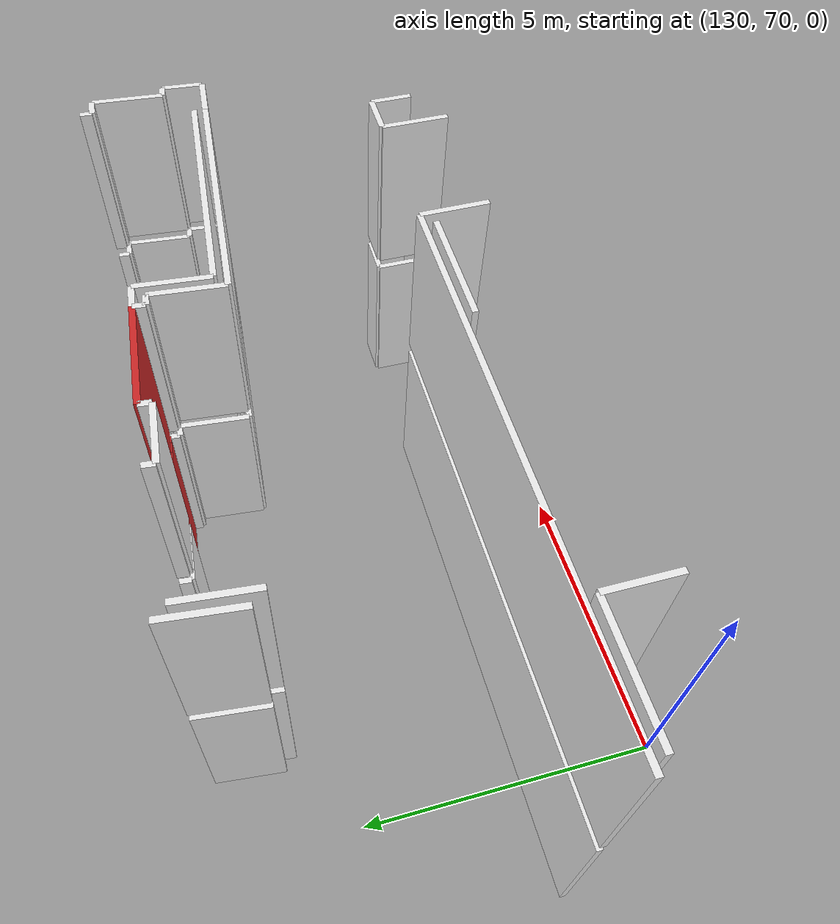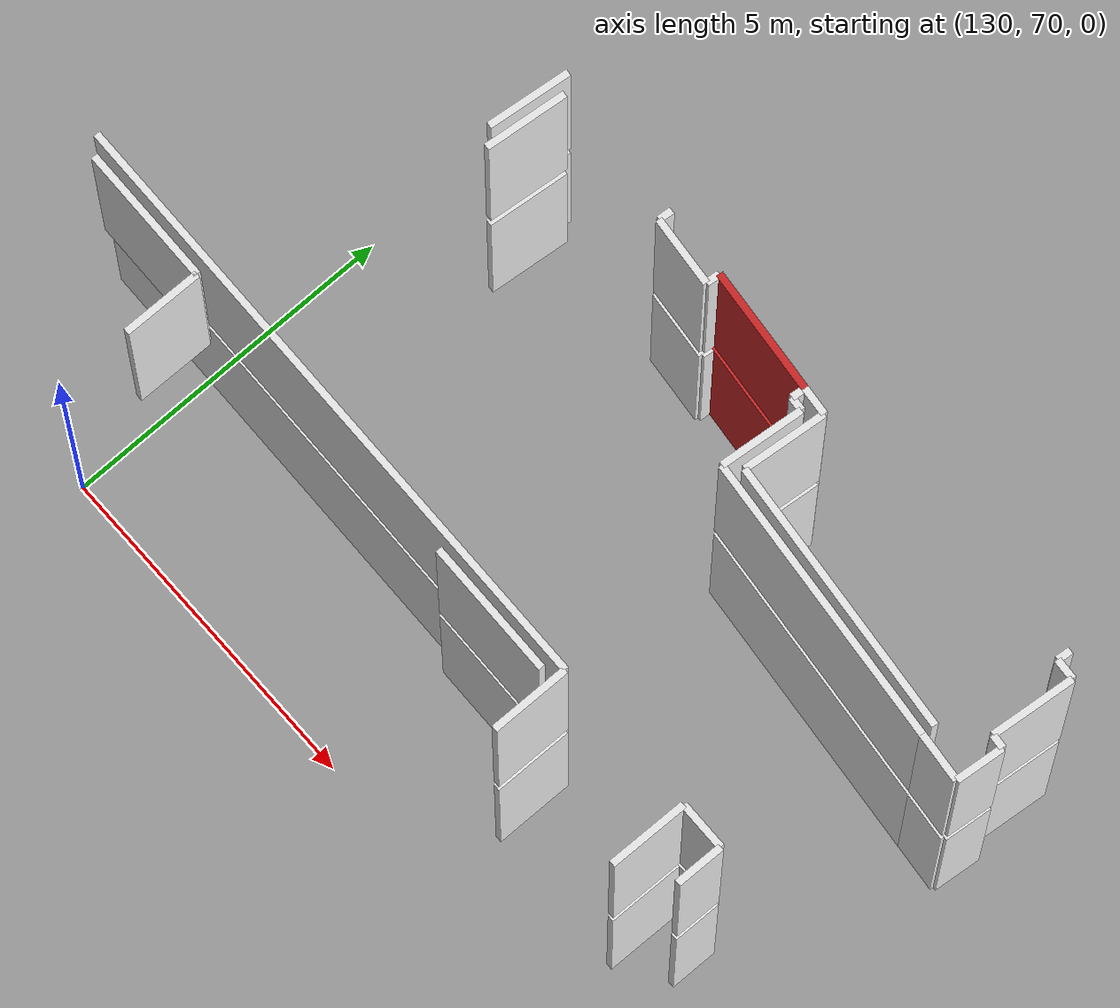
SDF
<sdf version="1.6">
 <world name="default">
  <model name="wall_135.5_76.8_0.0">
   <static>true</static>
   <pose>135.49499999999534 76.79000000003725 1.5 0 0 -0.10022174961299568</pose>
   <link name="link">
    <visual name="visual">
     <geometry><box><size>1.799027515083101 0.1 3</size></box></geometry>
     <material>
      <script><uri>file://media/materials/scripts/gazebo.material</uri><name>Gazebo/Red</name></script>
     </material>
    </visual>
   </link>
  </model>
  <model name="wall_134.4_76.9_0.0">
   <static>true</static>
   <pose>134.39999999999418 76.89999999990687 1.5 0 0 3.0419240009977764</pose>
   <link name="link">
    <visual name="visual">
     <geometry><box><size>0.4019950248137912 0.1 3</size></box></geometry>
     <material>
      <script><uri>file://media/materials/scripts/gazebo.material</uri><name>Gazebo/White</name></script>
     </material>
    </visual>
   </link>
  </model>
  <model name="wall_138.6_75.3_0.0">
   <static>true</static>
   <pose>138.63999999998487 75.26000000000931 1.5 0 0 3.0404164645756886</pose>
   <link name="link">
    <visual name="visual">
     <geometry><box><size>3.9602525171943066 0.1 3</size></box></geometry>
     <material>
      <script><uri>file://media/materials/scripts/gazebo.material</uri><name>Gazebo/White</name></script>
     </material>
    </visual>
   </link>
  </model>
  <model name="wall_136.7_76.1_0.0">
   <static>true</static>
   <pose>136.72999999998137 76.06000000005588 1.5 0 0 1.4711276743229451</pose>
   <link name="link">
    <visual name="visual">
     <geometry><box><size>1.2059850747193837 0.1 3</size></box></geometry>
     <material>
      <script><uri>file://media/materials/scripts/gazebo.material</uri><name>Gazebo/White</name></script>
     </material>
    </visual>
   </link>
  </model>
  <model name="wall_136.6_76.7_0.0">
   <static>true</static>
   <pose>136.5899999999965 76.68000000016764 1.5 0 0 3.0419240009977764</pose>
   <link name="link">
    <visual name="visual">
     <geometry><box><size>0.4019950248137912 0.1 3</size></box></geometry>
     <material>
      <script><uri>file://media/materials/scripts/gazebo.material</uri><name>Gazebo/White</name></script>
     </material>
    </visual>
   </link>
  </model>
  <model name="wall_131.3_76.6_0.0">
   <static>true</static>
   <pose>131.34500000000116 76.60000000009313 1.5 0 0 1.4628838380389488</pose>
   <link name="link">
    <visual name="visual">
     <geometry><box><size>1.2070211267550837 0.1 3</size></box></geometry>
     <material>
      <script><uri>file://media/materials/scripts/gazebo.material</uri><name>Gazebo/White</name></script>
     </material>
    </visual>
   </link>
  </model>
  <model name="wall_141.0_76.8_0.0">
   <static>true</static>
   <pose>140.9899999999907 76.8300000000745 1.5 0 0 -1.6704649792860586</pose>
   <link name="link">
    <visual name="visual">
     <geometry><box><size>0.20099751260961132 0.1 3</size></box></geometry>
     <material>
      <script><uri>file://media/materials/scripts/gazebo.material</uri><name>Gazebo/White</name></script>
     </material>
    </visual>
   </link>
  </model>
  <model name="wall_141.1_76.7_0.0">
   <static>true</static>
   <pose>141.13000000000466 76.71999999997206 1.5 0 0 -0.066568163827335</pose>
   <link name="link">
    <visual name="visual">
     <geometry><box><size>0.30066592761516014 0.1 3</size></box></geometry>
     <material>
      <script><uri>file://media/materials/scripts/gazebo.material</uri><name>Gazebo/White</name></script>
     </material>
    </visual>
   </link>
  </model>
  <model name="wall_141.2_76.1_0.0">
   <static>true</static>
   <pose>141.22000000000116 76.10999999986961 1.5 0 0 -1.6704649793148743</pose>
   <link name="link">
    <visual name="visual">
     <geometry><box><size>1.2059850747251755 0.1 3</size></box></geometry>
     <material>
      <script><uri>file://media/materials/scripts/gazebo.material</uri><name>Gazebo/White</name></script>
     </material>
    </visual>
   </link>
  </model>
  <model name="wall_141.3_75.5_0.0">
   <static>true</static>
   <pose>141.2599999999802 75.5 1.5 0 0 -0.09966865027235515</pose>
   <link name="link">
    <visual name="visual">
     <geometry><box><size>0.20099751238951993 0.1 3</size></box></geometry>
     <material>
      <script><uri>file://media/materials/scripts/gazebo.material</uri><name>Gazebo/White</name></script>
     </material>
    </visual>
   </link>
  </model>
  <model name="wall_141.3_75.1_0.0">
   <static>true</static>
   <pose>141.32499999998254 75.14500000001863 1.5 0 0 -1.6718996984815795</pose>
   <link name="link">
    <visual name="visual">
     <geometry><box><size>0.6935416357843824 0.1 3</size></box></geometry>
     <material>
      <script><uri>file://media/materials/scripts/gazebo.material</uri><name>Gazebo/White</name></script>
     </material>
    </visual>
   </link>
  </model>
  <model name="wall_140.9_74.8_0.0">
   <static>true</static>
   <pose>140.94000000000233 74.83499999996275 1.5 0 0 3.041924000670513</pose>
   <link name="link">
    <visual name="visual">
     <geometry><box><size>0.7034912934617817 0.1 3</size></box></geometry>
     <material>
      <script><uri>file://media/materials/scripts/gazebo.material</uri><name>Gazebo/White</name></script>
     </material>
    </visual>
   </link>
  </model>
  <model name="wall_138.5_75.1_0.0">
   <static>true</static>
   <pose>138.52000000001863 75.07499999995343 1.5 0 0 3.0428807098041264</pose>
   <link name="link">
    <visual name="visual">
     <geometry><box><size>4.1602523961721385 0.1 3</size></box></geometry>
     <material>
      <script><uri>file://media/materials/scripts/gazebo.material</uri><name>Gazebo/White</name></script>
     </material>
    </visual>
   </link>
  </model>
  <model name="wall_136.5_75.9_0.0">
   <static>true</static>
   <pose>136.5100000000093 75.87999999988824 1.5 0 0 1.4711276743229451</pose>
   <link name="link">
    <visual name="visual">
     <geometry><box><size>1.2059850747193837 0.1 3</size></box></geometry>
     <material>
      <script><uri>file://media/materials/scripts/gazebo.material</uri><name>Gazebo/White</name></script>
     </material>
    </visual>
   </link>
  </model>
  <model name="wall_136.5_76.5_0.0">
   <static>true</static>
   <pose>136.47000000000116 76.48999999999069 1.5 0 0 3.0419240010121844</pose>
   <link name="link">
    <visual name="visual">
     <geometry><box><size>0.20099751243585498 0.1 3</size></box></geometry>
     <material>
      <script><uri>file://media/materials/scripts/gazebo.material</uri><name>Gazebo/White</name></script>
     </material>
    </visual>
   </link>
  </model>
  <model name="wall_136.4_76.6_0.0">
   <static>true</static>
   <pose>136.38000000000466 76.60000000009313 1.5 0 0 1.4711276743037347</pose>
   <link name="link">
    <visual name="visual">
     <geometry><box><size>0.20099751260961132 0.1 3</size></box></geometry>
     <material>
      <script><uri>file://media/materials/scripts/gazebo.material</uri><name>Gazebo/White</name></script>
     </material>
    </visual>
   </link>
  </model>
  <model name="wall_134.6_76.8_0.0">
   <static>true</static>
   <pose>134.5899999999965 76.78000000002794 1.5 0 0 -1.6704649792284274</pose>
   <link name="link">
    <visual name="visual">
     <geometry><box><size>0.20099751214046915 0.1 3</size></box></geometry>
     <material>
      <script><uri>file://media/materials/scripts/gazebo.material</uri><name>Gazebo/White</name></script>
     </material>
    </visual>
   </link>
  </model>
  <model name="wall_134.1_76.7_0.0">
   <static>true</static>
   <pose>134.0800000000163 76.72999999998137 1.5 0 0 3.0419240014674718</pose>
   <link name="link">
    <visual name="visual">
     <geometry><box><size>1.004987562075021 0.1 3</size></box></geometry>
     <material>
      <script><uri>file://media/materials/scripts/gazebo.material</uri><name>Gazebo/White</name></script>
     </material>
    </visual>
   </link>
  </model>
  <model name="wall_133.6_76.9_0.0">
   <static>true</static>
   <pose>133.5899999999965 76.87999999988824 1.5 0 0 1.4711276745918913</pose>
   <link name="link">
    <visual name="visual">
     <geometry><box><size>0.20099751260381943 0.1 3</size></box></geometry>
     <material>
      <script><uri>file://media/materials/scripts/gazebo.material</uri><name>Gazebo/White</name></script>
     </material>
    </visual>
   </link>
  </model>
  <model name="wall_131.5_76.4_0.0">
   <static>true</static>
   <pose>131.52999999999884 76.38500000000931 1.5 0 0 -1.6712969258987618</pose>
   <link name="link">
    <visual name="visual">
     <geometry><box><size>1.1960351164910918 0.1 3</size></box></geometry>
     <material>
      <script><uri>file://media/materials/scripts/gazebo.material</uri><name>Gazebo/White</name></script>
     </material>
    </visual>
   </link>
  </model>
  <model name="wall_132.6_72.2_0.0">
   <static>true</static>
   <pose>132.64499999998952 72.2050000000745 1.5 0 0 -0.014491739052994581</pose>
   <link name="link">
    <visual name="visual">
     <geometry><box><size>8.970941979553427 0.1 3</size></box></geometry>
     <material>
      <script><uri>file://media/materials/scripts/gazebo.material</uri><name>Gazebo/White</name></script>
     </material>
    </visual>
   </link>
  </model>
  <model name="wall_137.1_71.6_0.0">
   <static>true</static>
   <pose>137.125 71.57000000006519 1.5 0 0 -1.579568031646505</pose>
   <link name="link">
    <visual name="visual">
     <geometry><box><size>1.1400438589359028 0.1 3</size></box></geometry>
     <material>
      <script><uri>file://media/materials/scripts/gazebo.material</uri><name>Gazebo/White</name></script>
     </material>
    </visual>
   </link>
  </model>
  <model name="wall_139.3_71.5_0.0">
   <static>true</static>
   <pose>139.3300000000163 71.54000000003725 1.5 0 0 1.553254266716002</pose>
   <link name="link">
    <visual name="visual">
     <geometry><box><size>1.1401754247642402 0.1 3</size></box></geometry>
     <material>
      <script><uri>file://media/materials/scripts/gazebo.material</uri><name>Gazebo/White</name></script>
     </material>
    </visual>
   </link>
  </model>
  <model name="wall_139.7_72.1_0.0">
   <static>true</static>
   <pose>139.68500000002678 72.10499999998137 1.5 0 0 -0.014491738741580868</pose>
   <link name="link">
    <visual name="visual">
     <geometry><box><size>0.6900724599625337 0.1 3</size></box></geometry>
     <material>
      <script><uri>file://media/materials/scripts/gazebo.material</uri><name>Gazebo/White</name></script>
     </material>
    </visual>
   </link>
  </model>
  <model name="wall_140.0_71.8_0.0">
   <static>true</static>
   <pose>140.02500000002328 71.75500000012107 1.5 0 0 -1.5852880658750648</pose>
   <link name="link">
    <visual name="visual">
     <geometry><box><size>0.6900724599077062 0.1 3</size></box></geometry>
     <material>
      <script><uri>file://media/materials/scripts/gazebo.material</uri><name>Gazebo/White</name></script>
     </material>
    </visual>
   </link>
  </model>
  <model name="wall_135.9_72.0_0.0">
   <static>true</static>
   <pose>135.94499999997788 71.9550000000745 1.5 0 0 -0.015383401914200052</pose>
   <link name="link">
    <visual name="visual">
     <geometry><box><size>1.9502307555930525 0.1 3</size></box></geometry>
     <material>
      <script><uri>file://media/materials/scripts/gazebo.material</uri><name>Gazebo/White</name></script>
     </material>
    </visual>
   </link>
  </model>
  <model name="wall_135.5_76.8_3.2">
   <static>true</static>
   <pose>135.49499999999534 76.79000000003725 4.7 0 0 -0.10022174961299568</pose>
   <link name="link">
    <visual name="visual">
     <geometry><box><size>1.799027515083101 0.1 3</size></box></geometry>
     <material>
      <script><uri>file://media/materials/scripts/gazebo.material</uri><name>Gazebo/Red</name></script>
     </material>
    </visual>
   </link>
  </model>
  <model name="wall_138.6_75.3_3.2">
   <static>true</static>
   <pose>138.63999999998487 75.26000000000931 4.7 0 0 3.0404164645756886</pose>
   <link name="link">
    <visual name="visual">
     <geometry><box><size>3.9602525171943066 0.1 3</size></box></geometry>
     <material>
      <script><uri>file://media/materials/scripts/gazebo.material</uri><name>Gazebo/White</name></script>
     </material>
    </visual>
   </link>
  </model>
  <model name="wall_136.7_76.1_3.2">
   <static>true</static>
   <pose>136.72999999998137 76.06000000005588 4.7 0 0 1.4711276743229451</pose>
   <link name="link">
    <visual name="visual">
     <geometry><box><size>1.2059850747193837 0.1 3</size></box></geometry>
     <material>
      <script><uri>file://media/materials/scripts/gazebo.material</uri><name>Gazebo/White</name></script>
     </material>
    </visual>
   </link>
  </model>
  <model name="wall_136.6_76.7_3.2">
   <static>true</static>
   <pose>136.5899999999965 76.68000000016764 4.7 0 0 3.0419240009977764</pose>
   <link name="link">
    <visual name="visual">
     <geometry><box><size>0.4019950248137912 0.1 3</size></box></geometry>
     <material>
      <script><uri>file://media/materials/scripts/gazebo.material</uri><name>Gazebo/White</name></script>
     </material>
    </visual>
   </link>
  </model>
  <model name="wall_131.3_76.6_3.2">
   <static>true</static>
   <pose>131.34500000000116 76.60000000009313 4.7 0 0 1.4628838380389488</pose>
   <link name="link">
    <visual name="visual">
     <geometry><box><size>1.2070211267550837 0.1 3</size></box></geometry>
     <material>
      <script><uri>file://media/materials/scripts/gazebo.material</uri><name>Gazebo/White</name></script>
     </material>
    </visual>
   </link>
  </model>
  <model name="wall_141.0_76.8_3.2">
   <static>true</static>
   <pose>140.9899999999907 76.8300000000745 4.7 0 0 -1.6704649792860586</pose>
   <link name="link">
    <visual name="visual">
     <geometry><box><size>0.20099751260961132 0.1 3</size></box></geometry>
     <material>
      <script><uri>file://media/materials/scripts/gazebo.material</uri><name>Gazebo/White</name></script>
     </material>
    </visual>
   </link>
  </model>
  <model name="wall_141.1_76.7_3.2">
   <static>true</static>
   <pose>141.13000000000466 76.71999999997206 4.7 0 0 -0.066568163827335</pose>
   <link name="link">
    <visual name="visual">
     <geometry><box><size>0.30066592761516014 0.1 3</size></box></geometry>
     <material>
      <script><uri>file://media/materials/scripts/gazebo.material</uri><name>Gazebo/White</name></script>
     </material>
    </visual>
   </link>
  </model>
  <model name="wall_141.2_76.1_3.2">
   <static>true</static>
   <pose>141.22000000000116 76.10999999986961 4.7 0 0 -1.6704649793148743</pose>
   <link name="link">
    <visual name="visual">
     <geometry><box><size>1.2059850747251755 0.1 3</size></box></geometry>
     <material>
      <script><uri>file://media/materials/scripts/gazebo.material</uri><name>Gazebo/White</name></script>
     </material>
    </visual>
   </link>
  </model>
  <model name="wall_141.3_75.5_3.2">
   <static>true</static>
   <pose>141.2599999999802 75.5 4.7 0 0 -0.09966865027235515</pose>
   <link name="link">
    <visual name="visual">
     <geometry><box><size>0.20099751238951993 0.1 3</size></box></geometry>
     <material>
      <script><uri>file://media/materials/scripts/gazebo.material</uri><name>Gazebo/White</name></script>
     </material>
    </visual>
   </link>
  </model>
  <model name="wall_141.3_75.1_3.2">
   <static>true</static>
   <pose>141.32499999998254 75.14500000001863 4.7 0 0 -1.6718996984815795</pose>
   <link name="link">
    <visual name="visual">
     <geometry><box><size>0.6935416357843824 0.1 3</size></box></geometry>
     <material>
      <script><uri>file://media/materials/scripts/gazebo.material</uri><name>Gazebo/White</name></script>
     </material>
    </visual>
   </link>
  </model>
  <model name="wall_140.9_74.8_3.2">
   <static>true</static>
   <pose>140.94000000000233 74.83499999996275 4.7 0 0 3.041924000670513</pose>
   <link name="link">
    <visual name="visual">
     <geometry><box><size>0.7034912934617817 0.1 3</size></box></geometry>
     <material>
      <script><uri>file://media/materials/scripts/gazebo.material</uri><name>Gazebo/White</name></script>
     </material>
    </visual>
   </link>
  </model>
  <model name="wall_138.5_75.1_3.2">
   <static>true</static>
   <pose>138.52000000001863 75.07499999995343 4.7 0 0 3.0428807098041264</pose>
   <link name="link">
    <visual name="visual">
     <geometry><box><size>4.1602523961721385 0.1 3</size></box></geometry>
     <material>
      <script><uri>file://media/materials/scripts/gazebo.material</uri><name>Gazebo/White</name></script>
     </material>
    </visual>
   </link>
  </model>
  <model name="wall_136.5_75.9_3.2">
   <static>true</static>
   <pose>136.5100000000093 75.87999999988824 4.7 0 0 1.4711276743229451</pose>
   <link name="link">
    <visual name="visual">
     <geometry><box><size>1.2059850747193837 0.1 3</size></box></geometry>
     <material>
      <script><uri>file://media/materials/scripts/gazebo.material</uri><name>Gazebo/White</name></script>
     </material>
    </visual>
   </link>
  </model>
  <model name="wall_136.5_76.5_3.2">
   <static>true</static>
   <pose>136.47000000000116 76.48999999999069 4.7 0 0 3.0419240010121844</pose>
   <link name="link">
    <visual name="visual">
     <geometry><box><size>0.20099751243585498 0.1 3</size></box></geometry>
     <material>
      <script><uri>file://media/materials/scripts/gazebo.material</uri><name>Gazebo/White</name></script>
     </material>
    </visual>
   </link>
  </model>
  <model name="wall_136.4_76.6_3.2">
   <static>true</static>
   <pose>136.38000000000466 76.60000000009313 4.7 0 0 1.4711276743037347</pose>
   <link name="link">
    <visual name="visual">
     <geometry><box><size>0.20099751260961132 0.1 3</size></box></geometry>
     <material>
      <script><uri>file://media/materials/scripts/gazebo.material</uri><name>Gazebo/White</name></script>
     </material>
    </visual>
   </link>
  </model>
  <model name="wall_134.6_76.8_3.2">
   <static>true</static>
   <pose>134.5899999999965 76.78000000002794 4.7 0 0 -1.6704649792284274</pose>
   <link name="link">
    <visual name="visual">
     <geometry><box><size>0.20099751214046915 0.1 3</size></box></geometry>
     <material>
      <script><uri>file://media/materials/scripts/gazebo.material</uri><name>Gazebo/White</name></script>
     </material>
    </visual>
   </link>
  </model>
  <model name="wall_134.1_76.7_3.2">
   <static>true</static>
   <pose>134.0800000000163 76.72999999998137 4.7 0 0 3.0419240014674718</pose>
   <link name="link">
    <visual name="visual">
     <geometry><box><size>1.004987562075021 0.1 3</size></box></geometry>
     <material>
      <script><uri>file://media/materials/scripts/gazebo.material</uri><name>Gazebo/White</name></script>
     </material>
    </visual>
   </link>
  </model>
  <model name="wall_133.6_76.9_3.2">
   <static>true</static>
   <pose>133.5899999999965 76.87999999988824 4.7 0 0 1.4711276745918913</pose>
   <link name="link">
    <visual name="visual">
     <geometry><box><size>0.20099751260381943 0.1 3</size></box></geometry>
     <material>
      <script><uri>file://media/materials/scripts/gazebo.material</uri><name>Gazebo/White</name></script>
     </material>
    </visual>
   </link>
  </model>
  <model name="wall_131.5_76.4_3.2">
   <static>true</static>
   <pose>131.52999999999884 76.38500000000931 4.7 0 0 -1.6712969258987618</pose>
   <link name="link">
    <visual name="visual">
     <geometry><box><size>1.1960351164910918 0.1 3</size></box></geometry>
     <material>
      <script><uri>file://media/materials/scripts/gazebo.material</uri><name>Gazebo/White</name></script>
     </material>
    </visual>
   </link>
  </model>
  <model name="wall_132.6_72.2_3.2">
   <static>true</static>
   <pose>132.64499999998952 72.2050000000745 4.7 0 0 -0.014491739052994581</pose>
   <link name="link">
    <visual name="visual">
     <geometry><box><size>8.970941979553427 0.1 3</size></box></geometry>
     <material>
      <script><uri>file://media/materials/scripts/gazebo.material</uri><name>Gazebo/White</name></script>
     </material>
    </visual>
   </link>
  </model>
  <model name="wall_137.1_71.6_3.2">
   <static>true</static>
   <pose>137.125 71.57000000006519 4.7 0 0 -1.579568031646505</pose>
   <link name="link">
    <visual name="visual">
     <geometry><box><size>1.1400438589359028 0.1 3</size></box></geometry>
     <material>
      <script><uri>file://media/materials/scripts/gazebo.material</uri><name>Gazebo/White</name></script>
     </material>
    </visual>
   </link>
  </model>
  <model name="wall_139.3_71.5_3.2">
   <static>true</static>
   <pose>139.3300000000163 71.54000000003725 4.7 0 0 1.553254266716002</pose>
   <link name="link">
    <visual name="visual">
     <geometry><box><size>1.1401754247642402 0.1 3</size></box></geometry>
     <material>
      <script><uri>file://media/materials/scripts/gazebo.material</uri><name>Gazebo/White</name></script>
     </material>
    </visual>
   </link>
  </model>
  <model name="wall_139.7_72.1_3.2">
   <static>true</static>
   <pose>139.68500000002678 72.10499999998137 4.7 0 0 -0.014491738741580868</pose>
   <link name="link">
    <visual name="visual">
     <geometry><box><size>0.6900724599625337 0.1 3</size></box></geometry>
     <material>
      <script><uri>file://media/materials/scripts/gazebo.material</uri><name>Gazebo/White</name></script>
     </material>
    </visual>
   </link>
  </model>
  <model name="wall_140.0_71.8_3.2">
   <static>true</static>
   <pose>140.02500000002328 71.75500000012107 4.7 0 0 -1.5852880658750648</pose>
   <link name="link">
    <visual name="visual">
     <geometry><box><size>0.6900724599077062 0.1 3</size></box></geometry>
     <material>
      <script><uri>file://media/materials/scripts/gazebo.material</uri><name>Gazebo/White</name></script>
     </material>
    </visual>
   </link>
  </model>
  <model name="wall_130.4_71.5_3.2">
   <static>true</static>
   <pose>130.35499999998137 71.45999999996275 4.7 0 0 1.5620246219397054</pose>
   <link name="link">
    <visual name="visual">
     <geometry><box><size>1.1400438584702595 0.1 3</size></box></geometry>
     <material>
      <script><uri>file://media/materials/scripts/gazebo.material</uri><name>Gazebo/White</name></script>
     </material>
    </visual>
   </link>
  </model>
  <model name="wall_129.4_72.0_3.2">
   <static>true</static>
   <pose>129.35999999998603 72.0449999999255 4.7 0 0 3.126593778307587</pose>
   <link name="link">
    <visual name="visual">
     <geometry><box><size>2.0002249873490845 0.1 3</size></box></geometry>
     <material>
      <script><uri>file://media/materials/scripts/gazebo.material</uri><name>Gazebo/White</name></script>
     </material>
    </visual>
   </link>
  </model>
  <model name="wall_135.9_72.0_3.2">
   <static>true</static>
   <pose>135.94499999997788 71.9550000000745 4.7 0 0 -0.015383401914200052</pose>
   <link name="link">
    <visual name="visual">
     <geometry><box><size>1.9502307555930525 0.1 3</size></box></geometry>
     <material>
      <script><uri>file://media/materials/scripts/gazebo.material</uri><name>Gazebo/White</name></script>
     </material>
    </visual>
   </link>
  </model>
 </world>
</sdf>
